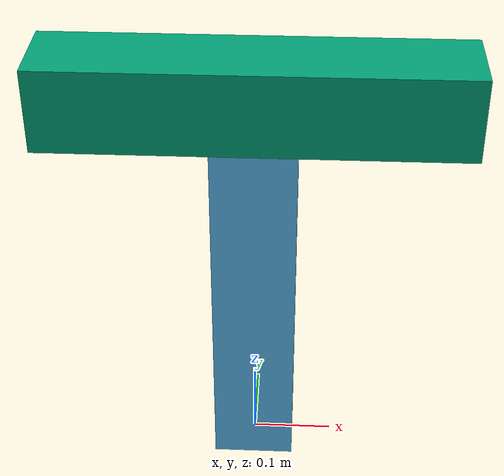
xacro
<?xml version="1.0"?>
<robot name="r216" xmlns:xacro="http://www.ros.org/wiki/xacro">

  <xacro:property name="height" value="0.5"/>
  <xacro:property name="PI" value="3.141592653589793" />
  <xacro:include filename="$(find r216_description)/xacro/r216.gazebo" />

  <link name="world"/>

  <joint name="fixed" type="fixed">
    <parent link="world"/>
    <child link="base_link"/>
  </joint>

  <link name="base_link">
    <visual>
      <origin xyz="0.0 0.0 ${height/2}" rpy="0.0 0.0 0.0"/>
      <geometry>
        <box size="0.10 0.10 ${height}"/>
      </geometry>
    </visual>
    <collision>
      <origin xyz="0.0 0.0 ${height/2}" rpy="0.0 0.0 0.0"/>
      <geometry>
        <box size="0.10 0.10 ${height}"/>
      </geometry>
    </collision>
    <inertial>
      <mass value="0.1"/>
      <inertia ixx="0.01" iyy="0.01" izz="0.01"
                          ixy="0.0"  ixz="0.0"
                                     iyz="0.0"/>
    </inertial>
  </link>

  <joint name="joint1" type="continuous">
    <parent link="base_link"/>
    <child link="arm1"/>
    <origin xyz="0 0 ${height}" rpy="0 0 0"/>
    <axis xyz="0 0 1"/>
    <dynamics damping="0.7"/>
  </joint>

  <link name="arm1">
    <visual>
      <origin xyz="0.0 0.0 0.0" rpy="0.0 ${PI/2} 0.0"/>
      <geometry>
        <box size="0.10 0.10 ${height}"/>
      </geometry>
    </visual>
    <collision>
      <origin xyz="0.0 0.0 0.0" rpy="0.0 ${PI/2} 0.0"/>
      <geometry>
        <box size="0.10 0.10 ${height}"/>
      </geometry>
    </collision>
    <inertial>
      <mass value="0.1"/>
      <inertia ixx="0.01" iyy="0.01" izz="0.01"
                          ixy="0.0"  ixz="0.0"
                                     iyz="0.0"/>
    </inertial>
  </link>

  <transmission name="tran1">
    <type>transmission_interface/SimpleTransmission</type>
    <joint name="joint1">
      <hardwareInterface>hardware_interface/EffortJointInterface</hardwareInterface>
    </joint>
    <actuator name="motor1">
      <hardwareInterface>hardware_interface/EffortJointInterface</hardwareInterface>
      <mechanicalReduction>1</mechanicalReduction>
    </actuator>
	</transmission>
</robot>
